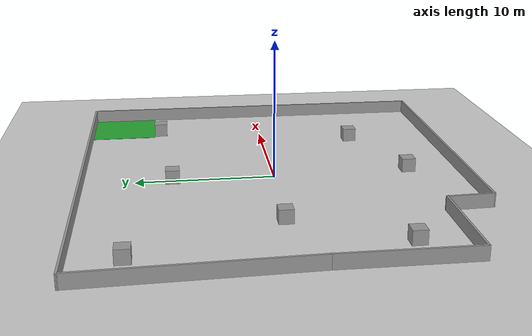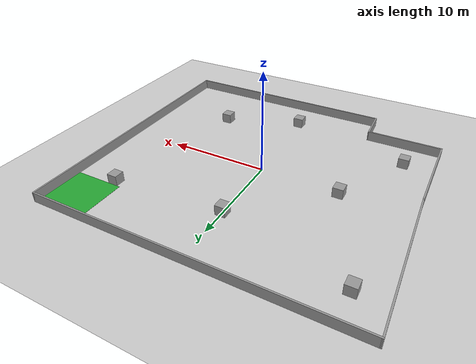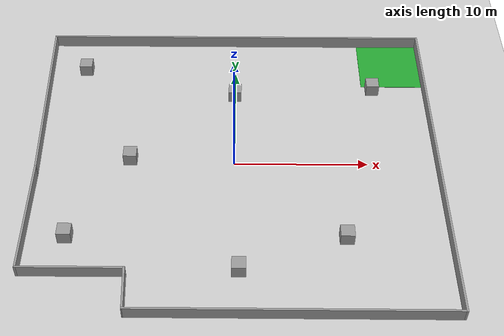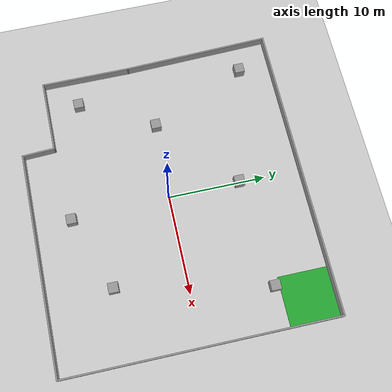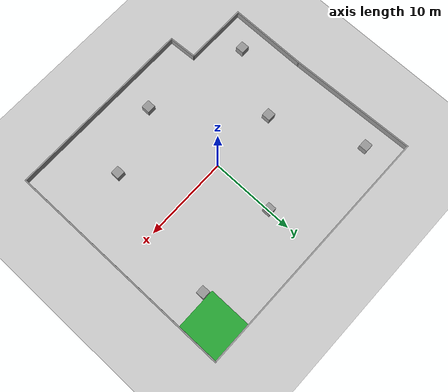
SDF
<sdf version="1.6">
 <world name="default">
  <light name="sun" type="directional">
   <pose>0 0 10 0 -0 0</pose>
   <diffuse>0.8 0.8 0.8 1</diffuse>
   <specular>0.2 0.2 0.2 1</specular>
   <attenuation>
    <range>1000</range>
    <constant>0.9</constant>
    <linear>0.01</linear>
    <quadratic>0.001</quadratic>
   </attenuation>
   <direction>-0.5 0.1 -0.9</direction>
  </light>
  <model name="ground_plane">
   <static>1</static>
   <link name="link">
    <collision name="collision">
     <geometry><plane><normal>0 0 1</normal><size>100 100</size></plane></geometry>
     <surface>
      <contact><collide_bitmask>65535</collide_bitmask></contact>
      <friction><ode><mu>100</mu><mu2>50</mu2></ode></friction>
     </surface>
    </collision>
    <visual name="visual">
     <cast_shadows>0</cast_shadows>
     <geometry><plane><normal>0 0 1</normal><size>100 100</size></plane></geometry>
     <material>
      <script><uri>file://media/materials/scripts/gazebo.material</uri><name>Gazebo/Grey</name></script>
     </material>
    </visual>
   </link>
  </model>
  <gravity>0 0 -9.8</gravity>
  <magnetic_field>6e-06 2.3e-05 -4.2e-05</magnetic_field>
  <atmosphere type="adiabatic"/>
  <physics name="default_physics" default="0" type="ode">
   <max_step_size>0.001</max_step_size>
   <real_time_factor>1</real_time_factor>
   <real_time_update_rate>1000</real_time_update_rate>
  </physics>
  <scene><ambient>0.4 0.4 0.4 1</ambient><background>0.7 0.7 0.7 1</background><shadows>1</shadows></scene>
  <audio><device>default</device></audio>
  <spherical_coordinates>
   <surface_model>EARTH_WGS84</surface_model>
   <latitude_deg>0</latitude_deg>
   <longitude_deg>0</longitude_deg>
   <elevation>0</elevation>
   <heading_deg>0</heading_deg>
  </spherical_coordinates>
  <model name="walls_Projet4A">
   <link name="Wall_0">
    <collision name="Wall_0_Collision">
     <geometry><box><size>22.5 0.15 1</size></box></geometry>
     <pose>0 0 0.5 0 -0 0</pose>
    </collision>
    <visual name="Wall_0_Visual">
     <pose>0 0 0.5 0 -0 0</pose>
     <geometry><box><size>22.5 0.15 1</size></box></geometry>
     <material>
      <script><uri>file://media/materials/scripts/gazebo.material</uri><name>Gazebo/Grey</name></script>
      <ambient>1 1 1 1</ambient>
     </material>
     <meta><layer>0</layer></meta>
    </visual>
    <pose>4.00123 -13.6745 0 0 -0 0</pose>
   </link>
   <link name="Wall_10">
    <collision name="Wall_10_Collision">
     <geometry><box><size>30.5 0.15 1</size></box></geometry>
     <pose>0 0 0.5 0 -0 0</pose>
    </collision>
    <visual name="Wall_10_Visual">
     <pose>0 0 0.5 0 -0 0</pose>
     <geometry><box><size>30.5 0.15 1</size></box></geometry>
     <material>
      <script><uri>file://media/materials/scripts/gazebo.material</uri><name>Gazebo/Grey</name></script>
      <ambient>1 1 1 1</ambient>
     </material>
     <meta><layer>0</layer></meta>
    </visual>
    <pose>0.001228 13.6755 0 0 -0 3.14159</pose>
   </link>
   <link name="Wall_11">
    <collision name="Wall_11_Collision">
     <geometry><box><size>15.1583 0.15 1</size></box></geometry>
     <pose>0 0 0.5 0 -0 0</pose>
    </collision>
    <visual name="Wall_11_Visual">
     <pose>0 0 0.5 0 -0 0</pose>
     <geometry><box><size>15.1583 0.15 1</size></box></geometry>
     <material>
      <script><uri>file://media/materials/scripts/gazebo.material</uri><name>Gazebo/Grey</name></script>
      <ambient>1 1 1 1</ambient>
     </material>
     <meta><layer>0</layer></meta>
    </visual>
    <pose>-14.9238 6.17546 0 0 -0 -1.53747</pose>
   </link>
   <link name="Wall_5">
    <collision name="Wall_5_Collision">
     <geometry><box><size>9.25 0.15 1</size></box></geometry>
     <pose>0 0 0.5 0 -0 0</pose>
    </collision>
    <visual name="Wall_5_Visual">
     <pose>0 0 0.5 0 -0 0</pose>
     <geometry><box><size>9.25 0.15 1</size></box></geometry>
     <material>
      <script><uri>file://media/materials/scripts/gazebo.material</uri><name>Gazebo/Grey</name></script>
      <ambient>1 1 1 1</ambient>
     </material>
     <meta><layer>0</layer></meta>
    </visual>
    <pose>-14.6738 -5.87454 0 0 -0 -1.5708</pose>
   </link>
   <link name="Wall_6">
    <collision name="Wall_6_Collision">
     <geometry><box><size>7.5 0.15 1</size></box></geometry>
     <pose>0 0 0.5 0 -0 0</pose>
    </collision>
    <visual name="Wall_6_Visual">
     <pose>0 0 0.5 0 -0 0</pose>
     <geometry><box><size>7.5 0.15 1</size></box></geometry>
     <material>
      <script><uri>file://media/materials/scripts/gazebo.material</uri><name>Gazebo/Grey</name></script>
      <ambient>1 1 1 1</ambient>
     </material>
     <meta><layer>0</layer></meta>
    </visual>
    <pose>-10.9988 -10.4245 0 0 -0 0</pose>
   </link>
   <link name="Wall_7">
    <collision name="Wall_7_Collision">
     <geometry><box><size>3.40346 0.15 1</size></box></geometry>
     <pose>0 0 0.5 0 -0 0</pose>
    </collision>
    <visual name="Wall_7_Visual">
     <pose>0 0 0.5 0 -0 0</pose>
     <geometry><box><size>3.40346 0.15 1</size></box></geometry>
     <material>
      <script><uri>file://media/materials/scripts/gazebo.material</uri><name>Gazebo/Grey</name></script>
      <ambient>1 1 1 1</ambient>
     </material>
     <meta><layer>0</layer></meta>
    </visual>
    <pose>-7.24877 -12.0495 0 0 -0 -1.52468</pose>
   </link>
   <link name="Wall_9">
    <collision name="Wall_9_Collision">
     <geometry><box><size>27.5 0.15 1</size></box></geometry>
     <pose>0 0 0.5 0 -0 0</pose>
    </collision>
    <visual name="Wall_9_Visual">
     <pose>0 0 0.5 0 -0 0</pose>
     <geometry><box><size>27.5 0.15 1</size></box></geometry>
     <material>
      <script><uri>file://media/materials/scripts/gazebo.material</uri><name>Gazebo/Grey</name></script>
      <ambient>1 1 1 1</ambient>
     </material>
     <meta><layer>0</layer></meta>
    </visual>
    <pose>15.1762 0.000461 0 0 -0 1.5708</pose>
   </link>
   <static>1</static>
  </model>
  <model name="unit_box">
   <pose>-7.82194 0.309985 0.499995 0 -1e-05 0</pose>
   <link name="link">
    <inertial>
     <mass>1</mass>
     <inertia>
      <ixx>0.166667</ixx>
      <ixy>0</ixy>
      <ixz>0</ixz>
      <iyy>0.166667</iyy>
      <iyz>0</iyz>
      <izz>0.166667</izz>
     </inertia>
    </inertial>
    <collision name="collision"><geometry><box><size>1 1 1</size></box></geometry></collision>
    <visual name="visual">
     <geometry><box><size>1 1 1</size></box></geometry>
     <material>
      <script><name>Gazebo/Grey</name><uri>file://media/materials/scripts/gazebo.material</uri></script>
     </material>
    </visual>
   </link>
  </model>
  <model name="unit_box_0">
   <pose>7.92941 -7.12408 0.499995 -1e-05 -0 -0</pose>
   <link name="link">
    <inertial>
     <mass>1</mass>
     <inertia>
      <ixx>0.166667</ixx>
      <ixy>0</ixy>
      <ixz>0</ixz>
      <iyy>0.166667</iyy>
      <iyz>0</iyz>
      <izz>0.166667</izz>
     </inertia>
    </inertial>
    <collision name="collision"><geometry><box><size>1 1 1</size></box></geometry></collision>
    <visual name="visual">
     <geometry><box><size>1 1 1</size></box></geometry>
     <material>
      <script><name>Gazebo/Grey</name><uri>file://media/materials/scripts/gazebo.material</uri></script>
     </material>
    </visual>
   </link>
  </model>
  <model name="unit_box_1">
   <pose>10.9962 8.10511 0.499995 0 -1e-05 0</pose>
   <link name="link">
    <inertial>
     <mass>1</mass>
     <inertia>
      <ixx>0.166667</ixx>
      <ixy>0</ixy>
      <ixz>0</ixz>
      <iyy>0.166667</iyy>
      <iyz>0</iyz>
      <izz>0.166667</izz>
     </inertia>
    </inertial>
    <collision name="collision"><geometry><box><size>1 1 1</size></box></geometry></collision>
    <visual name="visual">
     <geometry><box><size>1 1 1</size></box></geometry>
     <material>
      <script><name>Gazebo/Grey</name><uri>file://media/materials/scripts/gazebo.material</uri></script>
     </material>
    </visual>
   </link>
  </model>
  <model name="unit_box_2">
   <pose>-12.2436 10.3203 0.499995 -1e-05 -0 -0</pose>
   <link name="link">
    <inertial>
     <mass>1</mass>
     <inertia>
      <ixx>0.166667</ixx>
      <ixy>0</ixy>
      <ixz>0</ixz>
      <iyy>0.166667</iyy>
      <iyz>0</iyz>
      <izz>0.166667</izz>
     </inertia>
    </inertial>
    <collision name="collision"><geometry><box><size>1 1 1</size></box></geometry></collision>
    <visual name="visual">
     <geometry><box><size>1 1 1</size></box></geometry>
     <material>
      <script><name>Gazebo/Grey</name><uri>file://media/materials/scripts/gazebo.material</uri></script>
     </material>
    </visual>
   </link>
  </model>
  <model name="unit_box_3">
   <pose>-11.7958 -7.14595 0.499995 0 -1e-05 0</pose>
   <link name="link">
    <inertial>
     <mass>1</mass>
     <inertia>
      <ixx>0.166667</ixx>
      <ixy>0</ixy>
      <ixz>0</ixz>
      <iyy>0.166667</iyy>
      <iyz>0</iyz>
      <izz>0.166667</izz>
     </inertia>
    </inertial>
    <collision name="collision"><geometry><box><size>1 1 1</size></box></geometry></collision>
    <visual name="visual">
     <geometry><box><size>1 1 1</size></box></geometry>
     <material>
      <script><name>Gazebo/Grey</name><uri>file://media/materials/scripts/gazebo.material</uri></script>
     </material>
    </visual>
   </link>
  </model>
  <model name="unit_box_4">
   <pose>0.382965 -9.93962 0.499995 -1e-05 -0 -0</pose>
   <link name="link">
    <inertial>
     <mass>1</mass>
     <inertia>
      <ixx>0.166667</ixx>
      <ixy>0</ixy>
      <ixz>0</ixz>
      <iyy>0.166667</iyy>
      <iyz>0</iyz>
      <izz>0.166667</izz>
     </inertia>
    </inertial>
    <collision name="collision"><geometry><box><size>1 1 1</size></box></geometry></collision>
    <visual name="visual">
     <geometry><box><size>1 1 1</size></box></geometry>
     <material>
      <script><name>Gazebo/Grey</name><uri>file://media/materials/scripts/gazebo.material</uri></script>
     </material>
    </visual>
   </link>
  </model>
  <model name="unit_box_5">
   <pose>-0.016812 7.30651 0.499995 0 1e-05 0</pose>
   <link name="link">
    <inertial>
     <mass>1</mass>
     <inertia>
      <ixx>0.166667</ixx>
      <ixy>0</ixy>
      <ixz>0</ixz>
      <iyy>0.166667</iyy>
      <iyz>0</iyz>
      <izz>0.166667</izz>
     </inertia>
    </inertial>
    <collision name="collision"><geometry><box><size>1 1 1</size></box></geometry></collision>
    <visual name="visual">
     <geometry><box><size>1 1 1</size></box></geometry>
     <material>
      <script><name>Gazebo/Grey</name><uri>file://media/materials/scripts/gazebo.material</uri></script>
     </material>
    </visual>
   </link>
  </model>
  <model name="green_platform">
   <link name="link">
    <inertial>
     <mass>1</mass>
     <inertia>
      <ixx>0.166667</ixx>
      <ixy>0</ixy>
      <ixz>0</ixz>
      <iyy>0.166667</iyy>
      <iyz>0</iyz>
      <izz>0.166667</izz>
     </inertia>
    </inertial>
    <visual name="visual">
     <geometry><box><size>5 5 0.02</size></box></geometry>
     <material>
      <script><name>Gazebo/Green</name><uri>file://media/materials/scripts/gazebo.material</uri></script>
      <shader type="pixel"><normal_map>__default__</normal_map></shader>
      <ambient>0 1 0 1</ambient>
      <diffuse>0.1 1 0.1 1</diffuse>
      <specular>0.01 0.01 0.01 1</specular>
      <emissive>0 0 0 1</emissive>
     </material>
     <pose>0 0 0.01 0 -0 0</pose>
    </visual>
   </link>
   <static>1</static>
   <pose>12.7064 11.1121 0 0 -0 0</pose>
  </model>
 </world>
</sdf>
